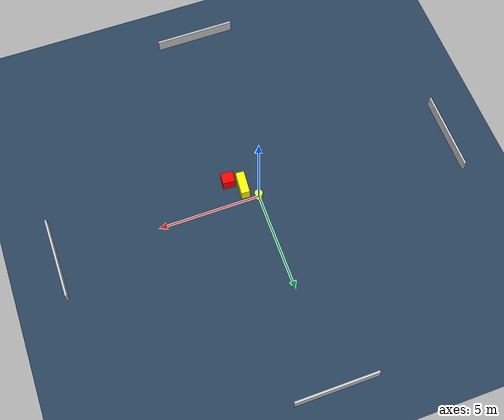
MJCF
<?xml version="1.0" ?>
<mujoco model="generated_environment">
  <option timestep="0.01" integrator="RK4" cone="elliptic"/>
  <default>
    <geom density="1"/>
  </default>
  <asset>
    <texture builtin="gradient" height="3072" name="skybox" rgb1="0.3 0.5 0.7" rgb2="0 0 0" type="skybox" width="512"/>
    <texture builtin="checker" height="300" name="groundplane" rgb1="0.2 0.3 0.4" rgb2="0.1 0.2 0.3" type="2d" width="300"/>
    <material name="groundplane" reflectance="0.2" texrepeat="5 5" texture="groundplane"/>
  </asset>
  <worldbody>
    <light dir="0 0 -1" directional="true" pos="0 0 1.5"/>
    <geom condim="3" friction="0.5 0.005 0.001" material="groundplane" name="floor" pos="0 0 0" size="0 0 0.05" type="plane"/>
    <body name="walls">
      <geom name="wall_1" condim="4" pos="-10.0 0.0 0.3" rgba="0.800000011920929 0.800000011920929 0.800000011920929 1.0" size="0.05 2.0 0.3" type="box"/>
      <geom name="wall_2" condim="4" pos="10.0 0.0 0.3" rgba="0.800000011920929 0.800000011920929 0.800000011920929 1.0" size="0.05 2.0 0.3" type="box"/>
      <geom name="wall_3" condim="4" pos="0.0 -10.0 0.3" rgba="0.800000011920929 0.800000011920929 0.800000011920929 1.0" size="2.0 0.05 0.3" type="box"/>
      <geom name="wall_4" condim="4" pos="0.0 10.0 0.3" rgba="0.800000011920929 0.800000011920929 0.800000011920929 1.0" size="2.0 0.05 0.3" type="box"/>
    </body>
    <body name="robot">
      <joint name="joint_x" type="slide" pos="0 0 0" axis="1 0 0"/>
      <joint name="joint_y" type="slide" pos="0 0 0" axis="0 1 0"/>
      <geom name="robot" type="cylinder" pos="0.0 0.0 0.2" size="0.2 0.2 0.0" mass="5.0" friction="1.0 0.005 0.0001" condim="4" rgba="1.0 1.0 0.0 1.0"/>
    </body>
    <body name="obstacle_1_movable">
      <geom name="obstacle_1_movable" condim="4" pos="0.5721631158374159 -0.7144089430634842 0.3" euler="0 0 265.50576553906046" friction="0.0 0.005 0.001" rgba="1.0 1.0 0.0 1.0" size="0.5714586099280137 0.21286343523619902 0.3" type="box" mass="0.1"/>
      <joint type="free"/>
    </body>
    <body name="obstacle_2_static">
      <geom name="obstacle_2_static" condim="4" pos="1.1581365724247705 -1.2076223406728723 0.3" euler="0 0 84.88034159791866" friction="0.0 0.005 0.001" rgba="1.0 0.0 0.0 1.0" size="0.2802862005404676 0.309090652441185 0.3" type="box"/>
    </body>
  </worldbody>
  <actuator>
    <motor name="actuator_x" joint="joint_x" gear="1" ctrlrange="-1 1"/>
    <motor name="actuator_y" joint="joint_y" gear="1" ctrlrange="-1 1"/>
  </actuator>
</mujoco>
